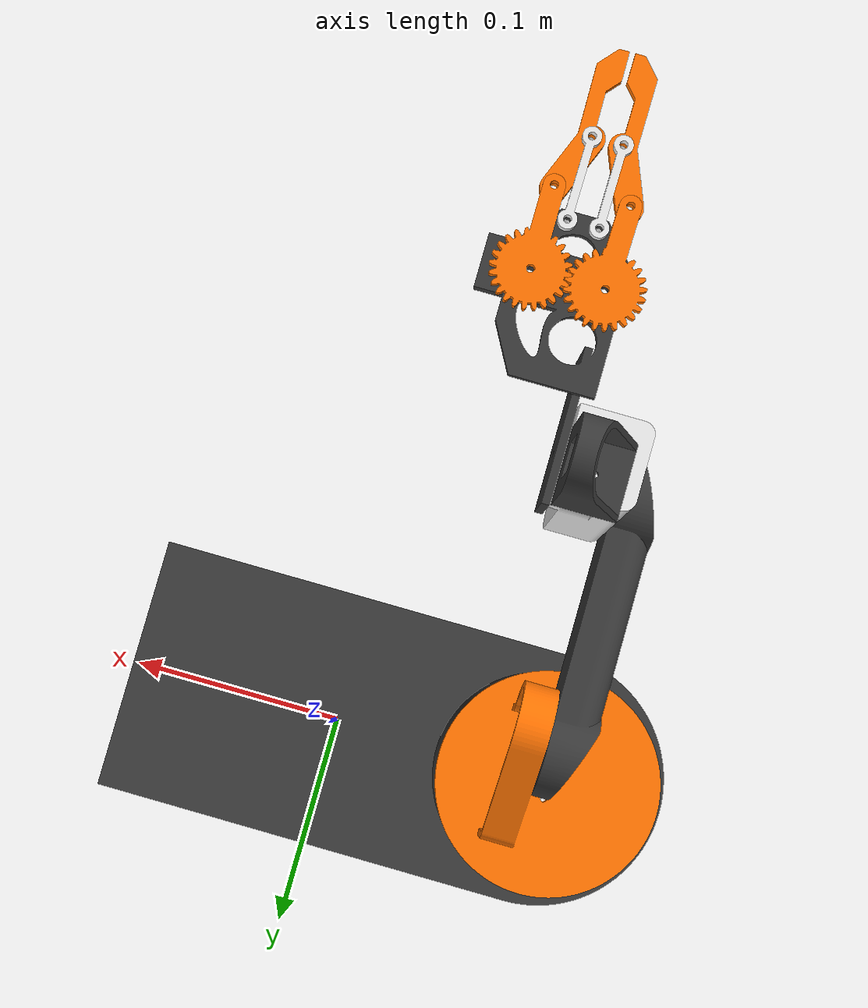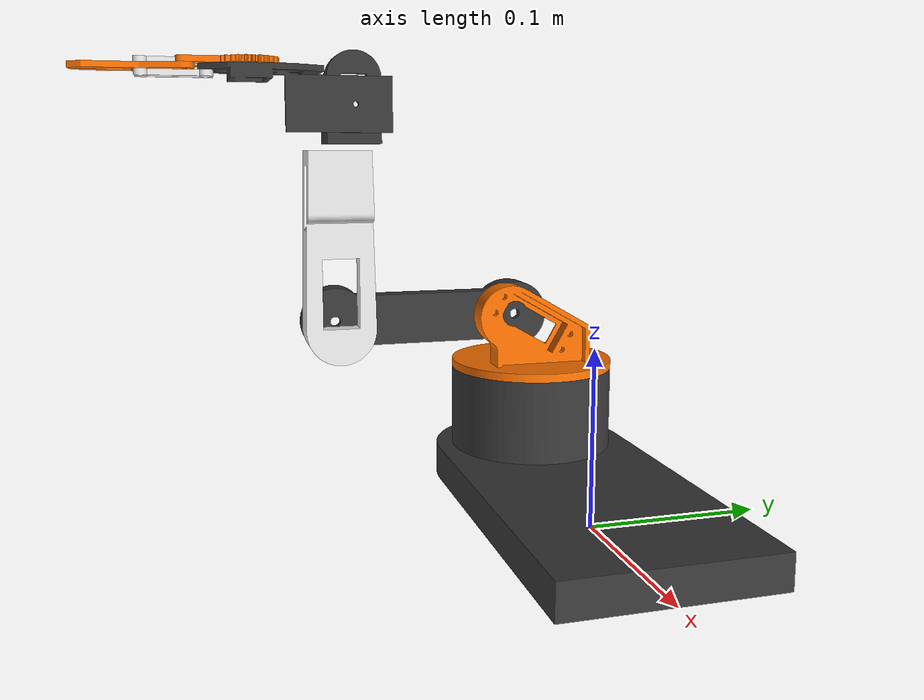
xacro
<?xml version="1.0"?>
<robot xmlns:xacro="http://www.ros.org/wiki/xacro" name="my_dof_arm">

  <material name="dark_gray">
    <color rgba="0.22 0.22 0.22 1.0"/>
  </material>

  <material name="orange">
    <color rgba="1.0 0.45 0.0 1.0"/>
  </material>

  <material name="white">
    <color rgba="0.92 0.92 0.92 1.0"/>
  </material>

  <link name="world"/>

  <joint name="world_to_base" type="fixed">
    <parent link="world"/>
    <child link="base_link"/>
    <origin xyz="0 0 0" rpy="0 0 0"/>
  </joint>

  <link name="base_link">
    <inertial>
      <origin xyz="-0.01843 0.0 0.01548" rpy="0 0 0"/>
      <mass value="0.1938"/>
      <inertia ixx="0.000312" ixy="0.0" ixz="0.0" iyy="0.001171" iyz="0.0" izz="0.001324"/>
    </inertial>
    <visual>
      <origin xyz="0 0 0" rpy="0 0 0"/>
      <geometry>
        <mesh filename="package://arm_description/meshes/Base.stl" scale="0.001 0.001 0.001"/>
      </geometry>
      <material name="dark_gray"/>
    </visual>
    <collision>
      <origin xyz="0 0 0" rpy="0 0 0"/>
      <geometry>
        <mesh filename="package://arm_description/meshes/Base.stl" scale="0.001 0.001 0.001"/>
      </geometry>
    </collision>
  </link>

  <joint name="joint_1" type="revolute">
    <parent link="base_link"/>
    <child link="shoulder_link"/>
    <origin xyz="-0.10 0 0.07" rpy="0 0 0"/>
    <axis xyz="0 0 1"/>
    <limit lower="-1.57" upper="1.57" effort="20.0" velocity="2.0"/>
  </joint>

  <link name="shoulder_link">
    <inertial>
      <origin xyz="0.005 -0.00254 0.01039" rpy="0 0 0"/>
      <mass value="0.0207"/>
      <inertia ixx="0.000022" ixy="0.0" ixz="0.0" iyy="0.000022" iyz="0.0" izz="0.000034"/>
    </inertial>
    <visual>
      <origin xyz="0 0 0" rpy="0 0 0"/>
      <geometry>
        <mesh filename="package://arm_description/meshes/Shoulder.stl" scale="0.001 0.001 0.001"/>
      </geometry>
      <material name="orange"/>
    </visual>
    <collision>
      <origin xyz="0 0 0" rpy="0 0 0"/>
      <geometry>
        <mesh filename="package://arm_description/meshes/Shoulder.stl" scale="0.001 0.001 0.001"/>
      </geometry>
    </collision>
  </link>

  <joint name="joint_2" type="revolute">
    <parent link="shoulder_link"/>
    <child link="elbow_link"/>
    <origin xyz="0.00906 -0.01413 0.03490" rpy="1.5708 0 -1.5708"/>
    <axis xyz="0 0 1"/>
    <limit lower="-0.52" upper="1.31" effort="20.0" velocity="2.0"/>
  </joint>

  <link name="elbow_link">
    <inertial>
      <origin xyz="0.05573 0.0 0.00793" rpy="0 0 0"/>
      <mass value="0.0196"/>
      <inertia ixx="0.000003" ixy="0.0" ixz="0.0" iyy="0.000038" iyz="0.0" izz="0.000040"/>
    </inertial>
    <visual>
      <origin xyz="0 0 0" rpy="0 0 0"/>
      <geometry>
        <mesh filename="package://arm_description/meshes/Elbow.stl" scale="0.001 0.001 0.001"/>
      </geometry>
      <material name="dark_gray"/>
    </visual>
    <collision>
      <origin xyz="0 0 0" rpy="0 0 0"/>
      <geometry>
        <mesh filename="package://arm_description/meshes/Elbow.stl" scale="0.001 0.001 0.001"/>
      </geometry>
    </collision>
  </link>

  <joint name="joint_3" type="revolute">
    <parent link="elbow_link"/>
    <child link="arm_link"/>
    <origin xyz="0.1115 0 0" rpy="3.1416 0 1.5708"/>
    <axis xyz="0 0 1"/>
    <limit lower="-1.13" upper="1.22" effort="20.0" velocity="2.0"/>
  </joint>

  <link name="arm_link">
    <inertial>
      <origin xyz="0.04629 0.00007 0.01412" rpy="0 0 0"/>
      <mass value="0.0216"/>
      <inertia ixx="0.000005" ixy="0.0" ixz="0.0" iyy="0.000028" iyz="0.0" izz="0.000029"/>
    </inertial>
    <visual>
      <origin xyz="0 0 0" rpy="0 0 0"/>
      <geometry>
        <mesh filename="package://arm_description/meshes/arm.stl" scale="0.001 0.001 0.001"/>
      </geometry>
      <material name="white"/>
    </visual>
    <collision>
      <origin xyz="0 0 0" rpy="0 0 0"/>
      <geometry>
        <mesh filename="package://arm_description/meshes/arm.stl" scale="0.001 0.001 0.001"/>
      </geometry>
    </collision>
  </link>

  <joint name="joint_4" type="revolute">
    <parent link="arm_link"/>
    <child link="wrist_link"/>
    <origin xyz="0.1035 -0.008 0.01825" rpy="3.14159 0 0"/>
    <axis xyz="1 0 0"/>
    <limit lower="-1.57" upper="1.57" effort="10.0" velocity="2.0"/>
  </joint>

  <link name="wrist_link">
    <inertial>
      <origin xyz="0.01905 0.0 -0.00546" rpy="0 0 0"/>
      <mass value="0.005"/>
      <inertia ixx="0.000001" ixy="0.0" ixz="0.0" iyy="0.000001" iyz="0.0" izz="0.000001"/>
    </inertial>
    <visual>
      <origin xyz="0 0.015 -0.0125" rpy="0 0 0"/>
      <geometry>
        <mesh filename="package://arm_description/meshes/Wrist_.stl" scale="0.001 0.001 0.001"/>
      </geometry>
      <material name="dark_gray"/>
    </visual>
    <collision>
      <origin xyz="0 0.015 -0.0125" rpy="0 0 0"/>
      <geometry>
        <mesh filename="package://arm_description/meshes/Wrist_.stl" scale="0.001 0.001 0.001"/>
      </geometry>
    </collision>
  </link>

  <joint name="joint_5" type="revolute">
    <parent link="wrist_link"/>
    <child link="gripper_link"/>
    <origin xyz="0.021 0 -0.0165" rpy="3.14159 -1.5708 0"/>
    <axis xyz="1 0 0"/>
    <limit lower="-1.05" upper="1.05" effort="10.0" velocity="2.0"/>
  </joint>

  <link name="gripper_link">
    <inertial>
      <origin xyz="-0.00992 0.03289 0.00851" rpy="0 0 0"/>
      <mass value="0.005"/>
      <inertia ixx="0.000005" ixy="0.0" ixz="0.0" iyy="0.000002" iyz="0.0" izz="0.000005"/>
    </inertial>
    <visual>
      <origin xyz="-0.013936 0.020 0.015" rpy="0 0 0"/>
      <geometry>
        <mesh filename="package://arm_description/meshes/gripper_base.stl" scale="0.001 0.001 0.001"/>
      </geometry>
      <material name="dark_gray"/>
    </visual>
    <collision>
      <origin xyz="-0.013936 0.020 0.015" rpy="0 0 0"/>
      <geometry>
        <mesh filename="package://arm_description/meshes/gripper_base.stl" scale="0.001 0.001 0.001"/>
      </geometry>
    </collision>
  </link>

  <joint name="tcp_joint" type="fixed">
    <parent link="gripper_link"/>
    <child link="tcp_link"/>
    <origin xyz="-0.013936 0.120 0.0165" rpy="0 0 0"/>
  </joint>

  <link name="tcp_link"/>

  <joint name="gripper_joint" type="revolute">
    <parent link="gripper_link"/>
    <child link="gripper_left_gear_link"/>
    <origin xyz="-0.0275 0.057565 0.015" rpy="0 0 0"/>
    <axis xyz="0 0 1"/>
    <limit lower="0.00" upper="0.65" effort="10.0" velocity="2.0"/>
  </joint>

  <link name="gripper_left_gear_link">
    <inertial>
      <origin xyz="0.0 0.00525 0.0045" rpy="0 0 0"/>
      <mass value="0.005"/>
      <inertia ixx="0.000001" ixy="0.0" ixz="0.0" iyy="0.000001" iyz="0.0" izz="0.000001"/>
    </inertial>
    <visual>
      <origin xyz="0.013564 -0.037565 0" rpy="0 0 0"/>
      <geometry>
        <mesh filename="package://arm_description/meshes/gripper_left_gear.stl" scale="0.001 0.001 0.001"/>
      </geometry>
      <material name="orange"/>
    </visual>
    <collision>
      <origin xyz="0.013564 -0.037565 0" rpy="0 0 0"/>
      <geometry>
        <mesh filename="package://arm_description/meshes/gripper_left_gear.stl" scale="0.001 0.001 0.001"/>
      </geometry>
    </collision>
  </link>

  <joint name="gripper_left_finger_joint" type="revolute">
    <parent link="gripper_left_gear_link"/>
    <child link="gripper_left_finger_link"/>
    <origin xyz="-0.000004 0.031 0" rpy="0 0 0"/>
    <axis xyz="0 0 1"/>
    <limit lower="-1.57" upper="1.57" effort="10.0" velocity="2.0"/>
    <mimic joint="gripper_joint" multiplier="-1.0" offset="0.0"/>
  </joint>

  <link name="gripper_left_finger_link">
    <inertial>
      <origin xyz="0.00538 0.02295 0.0015" rpy="0 0 0"/>
      <mass value="0.005"/>
      <inertia ixx="0.000001" ixy="0.0" ixz="0.0" iyy="0.000001" iyz="0.0" izz="0.000002"/>
    </inertial>
    <visual>
      <origin xyz="0.013568 -0.068565 0" rpy="0 0 0"/>
      <geometry>
        <mesh filename="package://arm_description/meshes/gripper_left_finger.stl" scale="0.001 0.001 0.001"/>
      </geometry>
      <material name="orange"/>
    </visual>
    <collision>
      <origin xyz="0.013568 -0.068565 0" rpy="0 0 0"/>
      <geometry>
        <mesh filename="package://arm_description/meshes/gripper_left_finger.stl" scale="0.001 0.001 0.001"/>
      </geometry>
    </collision>
  </link>

  <joint name="gripper_left_inner_joint" type="revolute">
    <parent link="gripper_link"/>
    <child link="gripper_left_inner_link"/>
    <origin xyz="-0.019815 0.078 0.015" rpy="0 0 0"/>
    <axis xyz="0 0 1"/>
    <limit lower="-1.57" upper="1.57" effort="10.0" velocity="2.0"/>
    <mimic joint="gripper_joint" multiplier="1.0" offset="0.0"/>
  </joint>

  <link name="gripper_left_inner_link">
    <inertial>
      <origin xyz="0.00023 0.0155 0.0015" rpy="0 0 0"/>
      <mass value="0.005"/>
      <inertia ixx="0.000001" ixy="0.0" ixz="0.0" iyy="0.000001" iyz="0.0" izz="0.000001"/>
    </inertial>
    <visual>
      <origin xyz="0.005879 -0.058 0" rpy="0 0 0"/>
      <geometry>
        <mesh filename="package://arm_description/meshes/gripper_left_inner.stl" scale="0.001 0.001 0.001"/>
      </geometry>
      <material name="white"/>
    </visual>
    <collision>
      <origin xyz="0.005879 -0.058 0" rpy="0 0 0"/>
      <geometry>
        <mesh filename="package://arm_description/meshes/gripper_left_inner.stl" scale="0.001 0.001 0.001"/>
      </geometry>
    </collision>
  </link>

  <joint name="gripper_right_gear_joint" type="revolute">
    <parent link="gripper_link"/>
    <child link="gripper_right_gear_link"/>
    <origin xyz="-0.0005 0.057565 0.015" rpy="0 0 0"/>
    <axis xyz="0 0 1"/>
    <limit lower="-1.57" upper="1.57" effort="10.0" velocity="2.0"/>
    <mimic joint="gripper_joint" multiplier="-1.0" offset="0.0"/>
  </joint>

  <link name="gripper_right_gear_link">
    <inertial>
      <origin xyz="0.00013 0.00523 0.0045" rpy="0 0 0"/>
      <mass value="0.005"/>
      <inertia ixx="0.000001" ixy="0.0" ixz="0.0" iyy="0.000001" iyz="0.0" izz="0.000001"/>
    </inertial>
    <visual>
      <origin xyz="-0.013436 -0.037565 0" rpy="0 0 0"/>
      <geometry>
        <mesh filename="package://arm_description/meshes/gripper_right_gear.stl" scale="0.001 0.001 0.001"/>
      </geometry>
      <material name="orange"/>
    </visual>
    <collision>
      <origin xyz="-0.013436 -0.037565 0" rpy="0 0 0"/>
      <geometry>
        <mesh filename="package://arm_description/meshes/gripper_right_gear.stl" scale="0.001 0.001 0.001"/>
      </geometry>
    </collision>
  </link>

  <joint name="gripper_right_finger_joint" type="revolute">
    <parent link="gripper_right_gear_link"/>
    <child link="gripper_right_finger_link"/>
    <origin xyz="0.000777 0.03099 0" rpy="0 0 0"/>
    <axis xyz="0 0 1"/>
    <limit lower="-1.57" upper="1.57" effort="10.0" velocity="2.0"/>
    <mimic joint="gripper_joint" multiplier="1.0" offset="0.0"/>
  </joint>

  <link name="gripper_right_finger_link">
    <inertial>
      <origin xyz="-0.00535 0.02295 0.0015" rpy="0 0 0"/>
      <mass value="0.005"/>
      <inertia ixx="0.000001" ixy="0.0" ixz="0.0" iyy="0.000001" iyz="0.0" izz="0.000002"/>
    </inertial>
    <visual>
      <origin xyz="-0.014213 -0.068555 0" rpy="0 0 0"/>
      <geometry>
        <mesh filename="package://arm_description/meshes/gripper_right_finger.stl" scale="0.001 0.001 0.001"/>
      </geometry>
      <material name="orange"/>
    </visual>
    <collision>
      <origin xyz="-0.014213 -0.068555 0" rpy="0 0 0"/>
      <geometry>
        <mesh filename="package://arm_description/meshes/gripper_right_finger.stl" scale="0.001 0.001 0.001"/>
      </geometry>
    </collision>
  </link>

  <joint name="gripper_right_inner_joint" type="revolute">
    <parent link="gripper_link"/>
    <child link="gripper_right_inner_link"/>
    <origin xyz="-0.008185 0.078 0.015" rpy="0 0 0"/>
    <axis xyz="0 0 1"/>
    <limit lower="-1.57" upper="1.57" effort="10.0" velocity="2.0"/>
    <mimic joint="gripper_joint" multiplier="-1.0" offset="0.0"/>
  </joint>

  <link name="gripper_right_inner_link">
    <inertial>
      <origin xyz="0.00017 0.0155 0.0015" rpy="0 0 0"/>
      <mass value="0.005"/>
      <inertia ixx="0.000001" ixy="0.0" ixz="0.0" iyy="0.000001" iyz="0.0" izz="0.000001"/>
    </inertial>
    <visual>
      <origin xyz="-0.005751 -0.058 0" rpy="0 0 0"/>
      <geometry>
        <mesh filename="package://arm_description/meshes/gripper_right_inner.stl" scale="0.001 0.001 0.001"/>
      </geometry>
      <material name="white"/>
    </visual>
    <collision>
      <origin xyz="-0.005751 -0.058 0" rpy="0 0 0"/>
      <geometry>
        <mesh filename="package://arm_description/meshes/gripper_right_inner.stl" scale="0.001 0.001 0.001"/>
      </geometry>
    </collision>
  </link>

  <ros2_control name="ArmSystem" type="system">
    <hardware>
      <plugin>mock_components/GenericSystem</plugin>
    </hardware>
    <joint name="joint_1">
      <command_interface name="position"/>
      <state_interface name="position">
        <param name="initial_value">0.0</param>
      </state_interface>
      <state_interface name="velocity"/>
    </joint>
    <joint name="joint_2">
      <command_interface name="position"/>
      <state_interface name="position">
        <param name="initial_value">0.0</param>
      </state_interface>
      <state_interface name="velocity"/>
    </joint>
    <joint name="joint_3">
      <command_interface name="position"/>
      <state_interface name="position">
        <param name="initial_value">0.0</param>
      </state_interface>
      <state_interface name="velocity"/>
    </joint>
    <joint name="joint_4">
      <command_interface name="position"/>
      <state_interface name="position">
        <param name="initial_value">0.0</param>
      </state_interface>
      <state_interface name="velocity"/>
    </joint>
    <joint name="joint_5">
      <command_interface name="position"/>
      <state_interface name="position">
        <param name="initial_value">0.0</param>
      </state_interface>
      <state_interface name="velocity"/>
    </joint>
    <joint name="gripper_joint">
      <command_interface name="position"/>
      <state_interface name="position">
        <param name="initial_value">0.0</param>
      </state_interface>
      <state_interface name="velocity"/>
    </joint>
  </ros2_control>

</robot>
